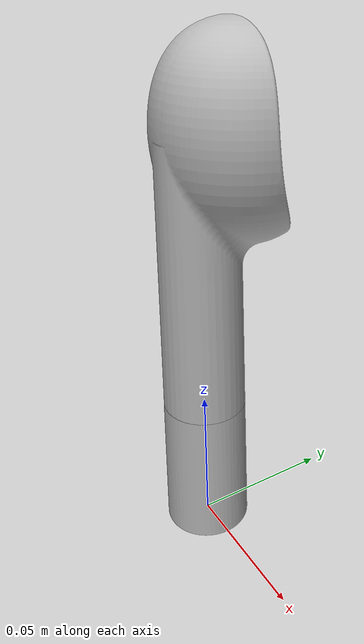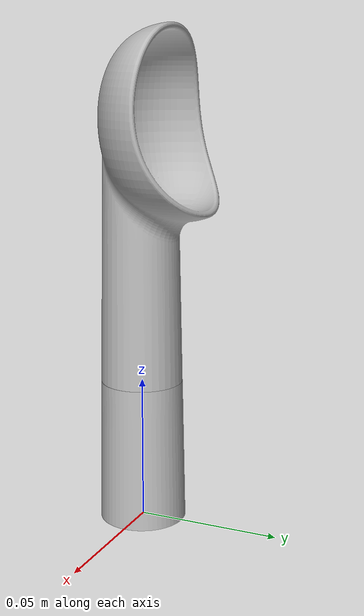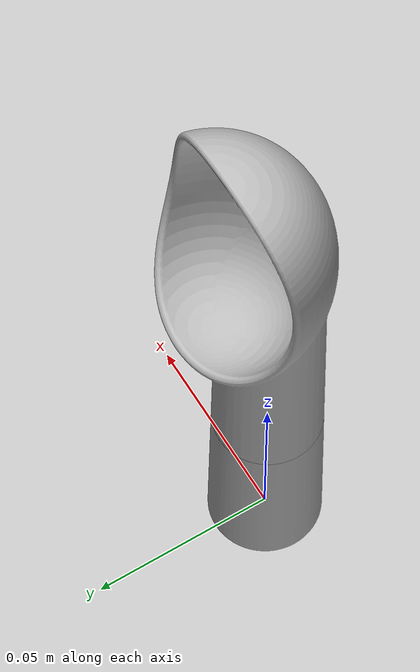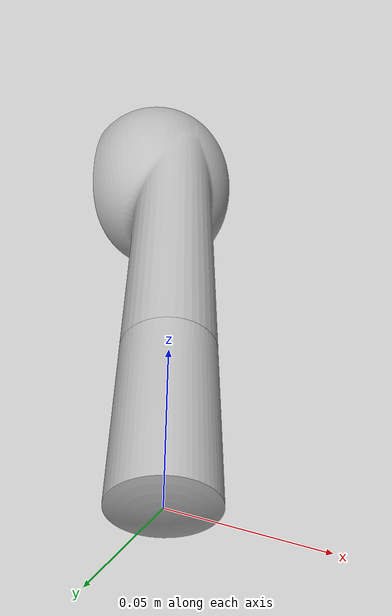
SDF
<?xml version="1.0" ?>
<sdf version="1.6">
	<model name="ice_scooper">
		<link name="scooper_link0">
			<self_collide>false</self_collide>
			<pose frame="">-4.218861302418105e-18 0.0 0.05 0.0 -0.0 0.0</pose>
			<inertial>
				<pose frame="">0.0 0.0 0.0 0 0 0</pose>
				<mass>0.2669885304809557</mass>
				<inertia>
					<ixx>0.00022458008170118322</ixx>
					<ixy>-4.80036010941376e-19</ixy>
					<ixz>8.967904800409653e-15</ixz>
					<iyy>0.00022458007831105729</iyy>
					<iyz>-1.0804078465209697e-18</iyz>
					<izz>2.80874024360927e-05</izz>
				</inertia>
			</inertial>
			<collision name="scooper_link0_collision">
				<geometry>
					<mesh>
						<uri>model://ice_scooper/meshes/CAD/scooper_link0.stl</uri>
						<scale>0.001 0.001 0.001</scale>
					</mesh>
				</geometry>
			</collision>
			<visual name="scooper_link0_visual">
				<geometry>
					<mesh>
						<uri>model://ice_scooper/meshes/CAD/scooper_link0.stl</uri>
						<scale>0.001 0.001 0.001</scale>
					</mesh>
				</geometry>
			</visual>
		</link>
		<link name="scooper_link1">
			<self_collide>false</self_collide>
			<pose frame="">-4.5356372103014414e-05 0.015 0.1401335355489842 0.0 -0.0 0.0</pose>
			<inertial>
				<pose frame="">0.0 0.0 0.0 0 0 0</pose>
				<mass>0.38440686802691965</mass>
				<inertia>
					<ixx>0.003826556881460197</ixx>
					<ixy>2.30129396177059e-09</ixy>
					<ixz>1.8759946429014462e-08</ixz>
					<iyy>0.003838390342701065</iyy>
					<iyz>-5.339767762843662e-06</iyz>
					<izz>5.363601459708919e-05</izz>
				</inertia>
			</inertial>
			<collision name="scooper_link1_collision">
				<geometry>
					<mesh>
						<uri>model://ice_scooper/meshes/CAD/scooper_link1.stl</uri>
						<scale>0.001 0.001 0.001</scale>
					</mesh>
				</geometry>
			</collision>
			<visual name="scooper_link1_visual">
				<geometry>
					<mesh>
						<uri>model://ice_scooper/meshes/CAD/scooper_link1.stl</uri>
						<scale>0.001 0.001 0.001</scale>
					</mesh>
				</geometry>
			</visual>
		</link>
		<joint name="scooper_joint0" type="fixed">
			<parent>scooper_link0</parent>
			<child>scooper_link1</child>
			<pose frame="">4.53563721030102e-05 -0.015 -0.09013353554898419 0 0 0</pose>
		</joint>
	</model>
</sdf>
